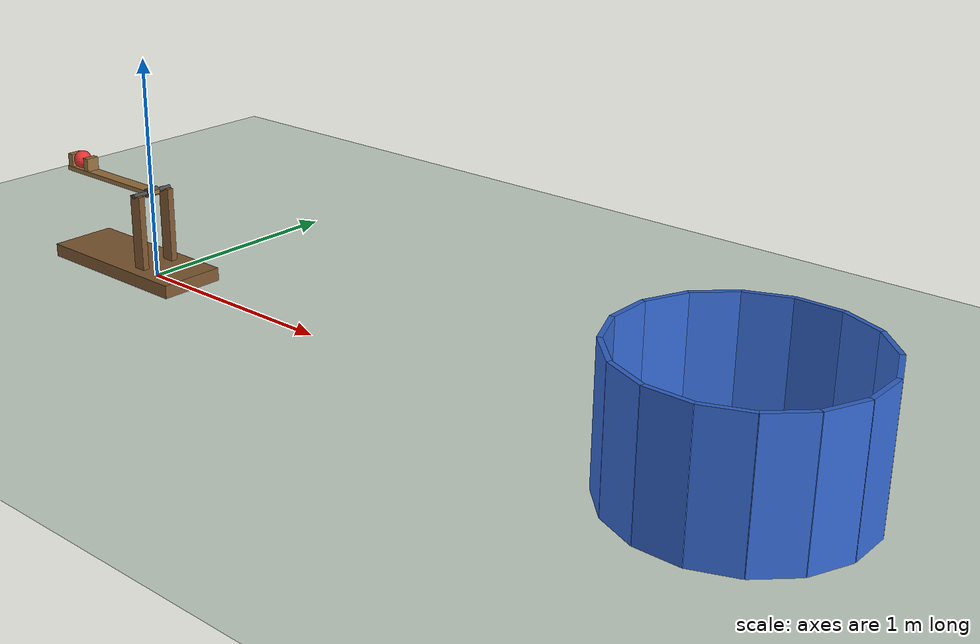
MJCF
<mujoco model="catapult_bucket">
  <compiler angle="degree" inertiafromgeom="true"/>
  <option timestep="0.002"/>

  <worldbody>
    <light name="sun" pos="1.5 -2 4" dir="-0.3 0.5 -1" directional="true"/>
    <geom name="floor" type="plane" size="10 10 0.1" rgba="0.8 0.85 0.8 1"/>

    <!-- static catapult frame -->
    <body name="catapult_frame" pos="0 0 0">
      <geom name="catapult_base" type="box" size="0.4 0.15 0.03" pos="-0.15 0 0.03" rgba="0.5 0.35 0.2 1"/>
      <geom name="catapult_post_left" type="box" size="0.03 0.015 0.185" pos="0 0.08 0.215" rgba="0.5 0.35 0.2 1"/>
      <geom name="catapult_post_right" type="box" size="0.03 0.015 0.185" pos="0 -0.08 0.215" rgba="0.5 0.35 0.2 1"/>
      <geom name="catapult_axle" type="cylinder" fromto="0 -0.1 0.4 0 0.1 0.4" size="0.01" rgba="0.3 0.3 0.3 1"/>

      <!-- throwing arm: hinge about y, strongly damped so it coasts at a fixed terminal speed to the 45 deg stop -->
      <body name="catapult_arm" pos="0 0 0.4">
        <joint name="catapult_hinge" type="hinge" axis="0 1 0" limited="true" range="0 45" solreflimit="0.01 1" damping="4"/>
        <geom name="catapult_hub" type="cylinder" fromto="0 -0.03 0 0 0.03 0" size="0.02" mass="0.02" contype="2" conaffinity="2" rgba="0.3 0.3 0.3 1"/>
        <geom name="catapult_beam" type="box" size="0.3 0.03 0.01" pos="-0.28 0 0" mass="0.3" contype="2" conaffinity="2" rgba="0.6 0.45 0.25 1"/>
        <geom name="catapult_lip_outer" type="box" size="0.015 0.03 0.03" pos="-0.555 0 0.04" mass="0.02" contype="2" conaffinity="2" rgba="0.6 0.45 0.25 1"/>
        <geom name="catapult_lip_inner" type="box" size="0.015 0.03 0.03" pos="-0.44 0 0.04" mass="0.02" contype="2" conaffinity="2" rgba="0.6 0.45 0.25 1"/>
      </body>
    </body>

    <!-- ball resting in the cup at the arm tip -->
    <body name="ball" pos="-0.5 0 0.45">
      <freejoint name="ball_free"/>
      <geom name="ball" type="sphere" size="0.04" mass="0.1" contype="1" conaffinity="3" rgba="0.9 0.2 0.2 1"/>
    </body>

    <!-- open bucket centred 3 m downrange: inner radius 0.45 m, walls 0.55 m tall -->
    <body name="bucket" pos="3 0 0">
      <geom name="bucket_bottom" type="cylinder" size="0.47 0.01" pos="0 0 0.01" rgba="0.2 0.4 0.8 1"/>
      <geom name="bucket_wall_00" type="box" size="0.01 0.092 0.275" pos="0.46 0 0.275" euler="0 0 0" rgba="0.2 0.4 0.8 1"/>
      <geom name="bucket_wall_01" type="box" size="0.01 0.092 0.275" pos="0.425 0.176 0.275" euler="0 0 22.5" rgba="0.2 0.4 0.8 1"/>
      <geom name="bucket_wall_02" type="box" size="0.01 0.092 0.275" pos="0.3253 0.3253 0.275" euler="0 0 45" rgba="0.2 0.4 0.8 1"/>
      <geom name="bucket_wall_03" type="box" size="0.01 0.092 0.275" pos="0.176 0.425 0.275" euler="0 0 67.5" rgba="0.2 0.4 0.8 1"/>
      <geom name="bucket_wall_04" type="box" size="0.01 0.092 0.275" pos="0 0.46 0.275" euler="0 0 90" rgba="0.2 0.4 0.8 1"/>
      <geom name="bucket_wall_05" type="box" size="0.01 0.092 0.275" pos="-0.176 0.425 0.275" euler="0 0 112.5" rgba="0.2 0.4 0.8 1"/>
      <geom name="bucket_wall_06" type="box" size="0.01 0.092 0.275" pos="-0.3253 0.3253 0.275" euler="0 0 135" rgba="0.2 0.4 0.8 1"/>
      <geom name="bucket_wall_07" type="box" size="0.01 0.092 0.275" pos="-0.425 0.176 0.275" euler="0 0 157.5" rgba="0.2 0.4 0.8 1"/>
      <geom name="bucket_wall_08" type="box" size="0.01 0.092 0.275" pos="-0.46 0 0.275" euler="0 0 180" rgba="0.2 0.4 0.8 1"/>
      <geom name="bucket_wall_09" type="box" size="0.01 0.092 0.275" pos="-0.425 -0.176 0.275" euler="0 0 202.5" rgba="0.2 0.4 0.8 1"/>
      <geom name="bucket_wall_10" type="box" size="0.01 0.092 0.275" pos="-0.3253 -0.3253 0.275" euler="0 0 225" rgba="0.2 0.4 0.8 1"/>
      <geom name="bucket_wall_11" type="box" size="0.01 0.092 0.275" pos="-0.176 -0.425 0.275" euler="0 0 247.5" rgba="0.2 0.4 0.8 1"/>
      <geom name="bucket_wall_12" type="box" size="0.01 0.092 0.275" pos="0 -0.46 0.275" euler="0 0 270" rgba="0.2 0.4 0.8 1"/>
      <geom name="bucket_wall_13" type="box" size="0.01 0.092 0.275" pos="0.176 -0.425 0.275" euler="0 0 292.5" rgba="0.2 0.4 0.8 1"/>
      <geom name="bucket_wall_14" type="box" size="0.01 0.092 0.275" pos="0.3253 -0.3253 0.275" euler="0 0 315" rgba="0.2 0.4 0.8 1"/>
      <geom name="bucket_wall_15" type="box" size="0.01 0.092 0.275" pos="0.425 -0.176 0.275" euler="0 0 337.5" rgba="0.2 0.4 0.8 1"/>
    </body>
  </worldbody>

  <actuator>
    <motor name="catapult_motor" joint="catapult_hinge" gear="1" ctrllimited="true" ctrlrange="0 60"/>
  </actuator>

  <keyframe>
    <key name="start" ctrl="44.7"/>
  </keyframe>
</mujoco>
